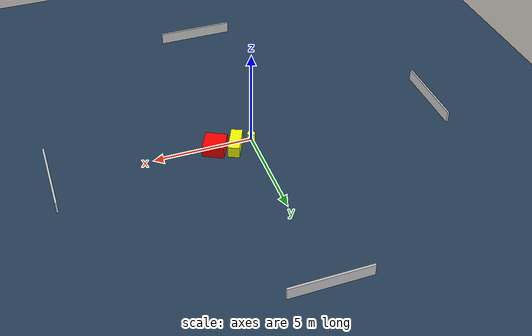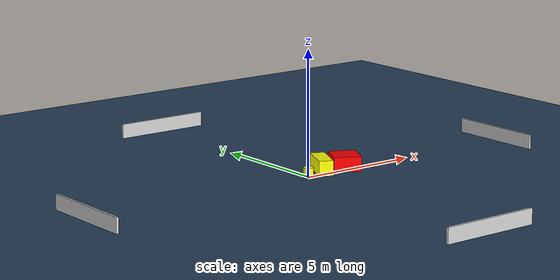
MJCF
<?xml version="1.0" ?>
<mujoco model="generated_environment">
  <option timestep="0.01" integrator="RK4" cone="elliptic"/>
  <default>
    <geom density="1"/>
  </default>
  <asset>
    <texture builtin="gradient" height="3072" name="skybox" rgb1="0.3 0.5 0.7" rgb2="0 0 0" type="skybox" width="512"/>
    <texture builtin="checker" height="300" name="groundplane" rgb1="0.2 0.3 0.4" rgb2="0.1 0.2 0.3" type="2d" width="300"/>
    <material name="groundplane" reflectance="0.2" texrepeat="5 5" texture="groundplane"/>
  </asset>
  <worldbody>
    <light dir="0 0 -1" directional="true" pos="0 0 1.5"/>
    <geom condim="3" friction="0.5 0.005 0.001" material="groundplane" name="floor" pos="0 0 0" size="0 0 0.05" type="plane"/>
    <body name="walls">
      <geom name="wall_1" condim="4" pos="-10.0 0.0 0.3" rgba="0.800000011920929 0.800000011920929 0.800000011920929 1.0" size="0.05 2.0 0.3" type="box"/>
      <geom name="wall_2" condim="4" pos="10.0 0.0 0.3" rgba="0.800000011920929 0.800000011920929 0.800000011920929 1.0" size="0.05 2.0 0.3" type="box"/>
      <geom name="wall_3" condim="4" pos="0.0 -10.0 0.3" rgba="0.800000011920929 0.800000011920929 0.800000011920929 1.0" size="2.0 0.05 0.3" type="box"/>
      <geom name="wall_4" condim="4" pos="0.0 10.0 0.3" rgba="0.800000011920929 0.800000011920929 0.800000011920929 1.0" size="2.0 0.05 0.3" type="box"/>
    </body>
    <body name="robot">
      <joint name="joint_x" type="slide" pos="0 0 0" axis="1 0 0"/>
      <joint name="joint_y" type="slide" pos="0 0 0" axis="0 1 0"/>
      <geom name="robot" type="cylinder" pos="0.0 0.0 0.2" size="0.2 0.2 0.0" mass="5.0" friction="1.0 0.005 0.0001" condim="4" rgba="1.0 1.0 0.0 1.0"/>
    </body>
    <body name="obstacle_1_movable">
      <geom name="obstacle_1_movable" condim="4" pos="0.9592445876632735 0.3700663302038612 0.3" euler="0 0 154.92380736378988" friction="0.0 0.005 0.001" rgba="1.0 1.0 0.0 1.0" size="0.2877273058837267 0.7150957698626506 0.3" type="box" mass="0.1"/>
      <joint type="free"/>
    </body>
    <body name="obstacle_2_static">
      <geom name="obstacle_2_static" condim="4" pos="1.9594303997312887 0.17379991997149702 0.3" euler="0 0 152.9875428842952" friction="0.0 0.005 0.001" rgba="1.0 0.0 0.0 1.0" size="0.5448187190479481 0.5669035721493645 0.3" type="box"/>
    </body>
  </worldbody>
  <actuator>
    <motor name="actuator_x" joint="joint_x" gear="1" ctrlrange="-1 1"/>
    <motor name="actuator_y" joint="joint_y" gear="1" ctrlrange="-1 1"/>
  </actuator>
</mujoco>
